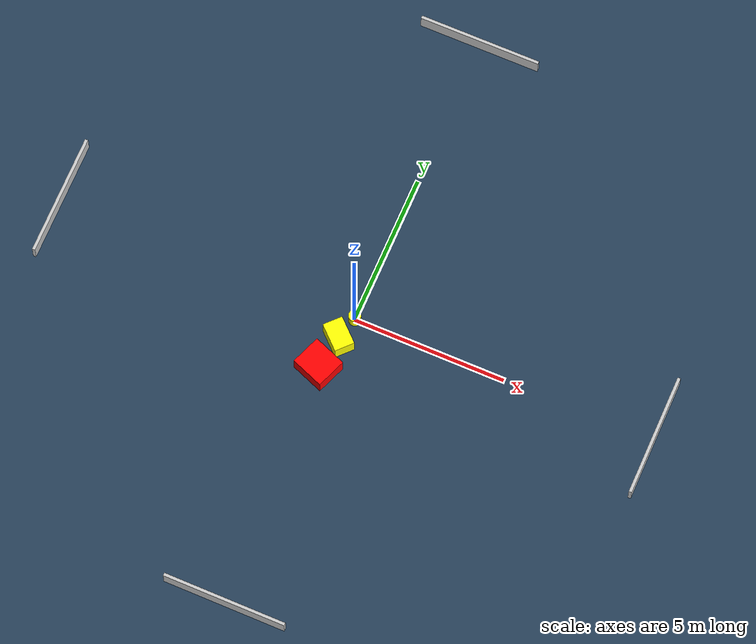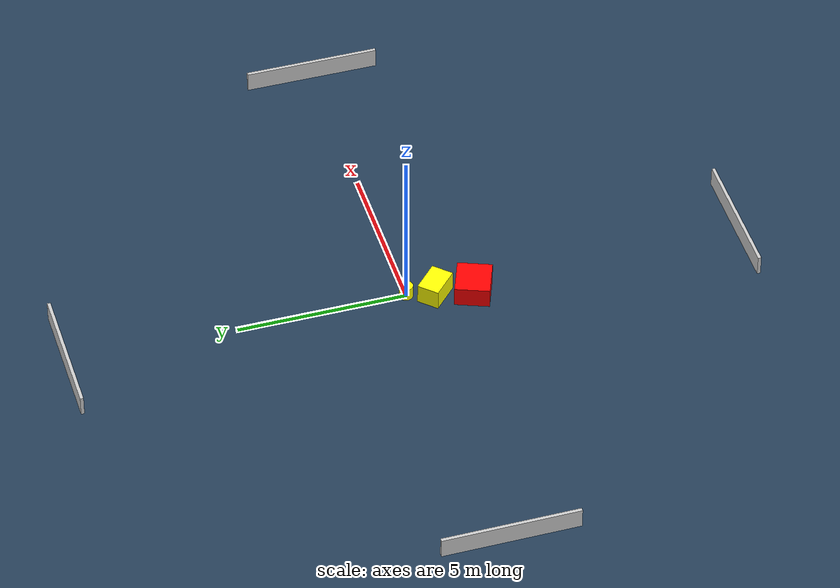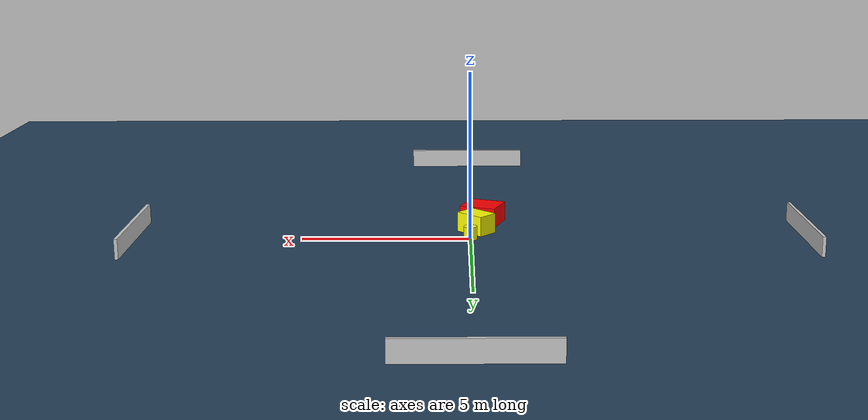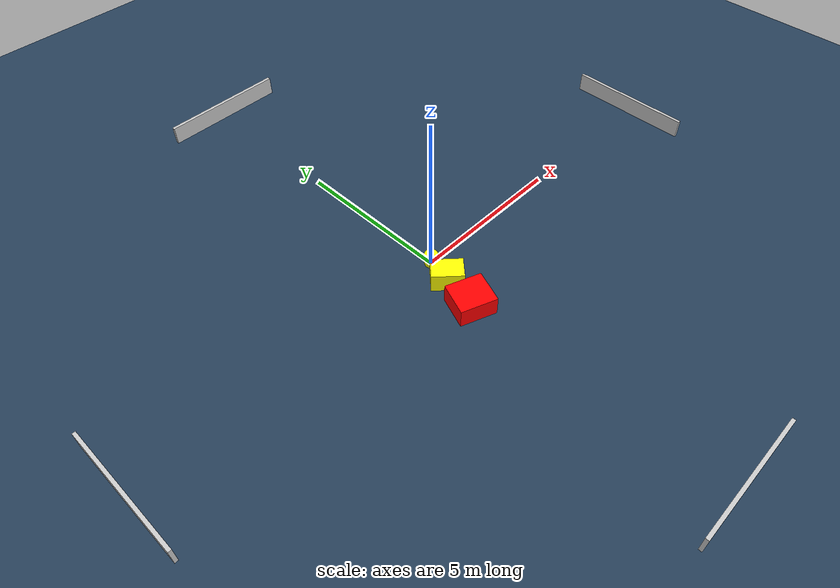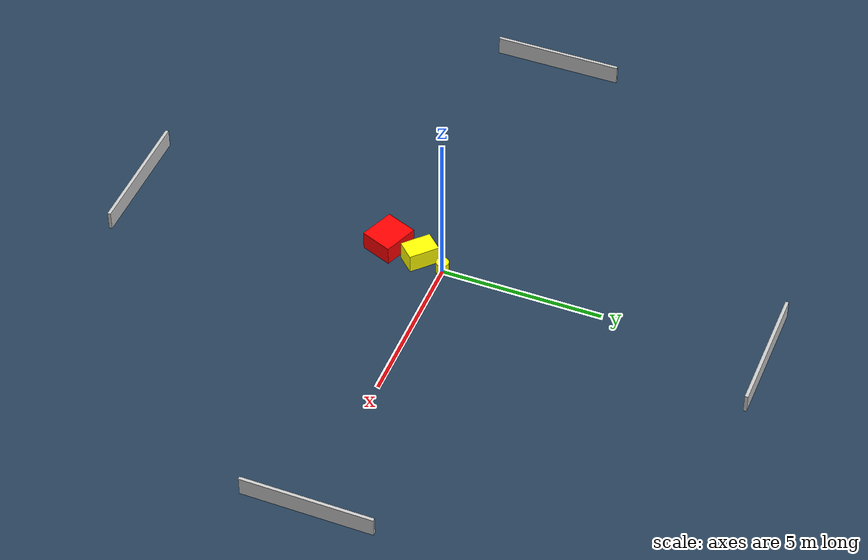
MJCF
<?xml version="1.0" ?>
<mujoco model="generated_environment">
  <option timestep="0.01" integrator="RK4" cone="elliptic"/>
  <default>
    <geom density="1"/>
  </default>
  <asset>
    <texture builtin="gradient" height="3072" name="skybox" rgb1="0.3 0.5 0.7" rgb2="0 0 0" type="skybox" width="512"/>
    <texture builtin="checker" height="300" name="groundplane" rgb1="0.2 0.3 0.4" rgb2="0.1 0.2 0.3" type="2d" width="300"/>
    <material name="groundplane" reflectance="0.2" texrepeat="5 5" texture="groundplane"/>
  </asset>
  <worldbody>
    <light dir="0 0 -1" directional="true" pos="0 0 1.5"/>
    <geom condim="3" friction="0.5 0.005 0.001" material="groundplane" name="floor" pos="0 0 0" size="0 0 0.05" type="plane"/>
    <body name="walls">
      <geom name="wall_1" condim="4" pos="-10.0 0.0 0.3" rgba="0.800000011920929 0.800000011920929 0.800000011920929 1.0" size="0.05 2.0 0.3" type="box"/>
      <geom name="wall_2" condim="4" pos="10.0 0.0 0.3" rgba="0.800000011920929 0.800000011920929 0.800000011920929 1.0" size="0.05 2.0 0.3" type="box"/>
      <geom name="wall_3" condim="4" pos="0.0 -10.0 0.3" rgba="0.800000011920929 0.800000011920929 0.800000011920929 1.0" size="2.0 0.05 0.3" type="box"/>
      <geom name="wall_4" condim="4" pos="0.0 10.0 0.3" rgba="0.800000011920929 0.800000011920929 0.800000011920929 1.0" size="2.0 0.05 0.3" type="box"/>
    </body>
    <body name="robot">
      <joint name="joint_x" type="slide" pos="0 0 0" axis="1 0 0"/>
      <joint name="joint_y" type="slide" pos="0 0 0" axis="0 1 0"/>
      <geom name="robot" type="cylinder" pos="0.0 0.0 0.2" size="0.2 0.2 0.0" mass="5.0" friction="1.0 0.005 0.0001" condim="4" rgba="1.0 1.0 0.0 1.0"/>
    </body>
    <body name="obstacle_1_movable">
      <geom name="obstacle_1_movable" condim="4" pos="-0.19831471661577565 -0.8082430866932346 0.3" euler="0 0 316.7332031793922" friction="0.0 0.005 0.001" rgba="1.0 1.0 0.0 1.0" size="0.47402574747812093 0.3279663465495486 0.3" type="box" mass="0.1"/>
      <joint type="free"/>
    </body>
    <body name="obstacle_2_static">
      <geom name="obstacle_2_static" condim="4" pos="-0.40668669306036637 -1.8906761923909499 0.3" euler="0 0 338.7957134753031" friction="0.0 0.005 0.001" rgba="1.0 0.0 0.0 1.0" size="0.5595752234987914 0.5085550331003343 0.3" type="box"/>
    </body>
  </worldbody>
  <actuator>
    <motor name="actuator_x" joint="joint_x" gear="1" ctrlrange="-1 1"/>
    <motor name="actuator_y" joint="joint_y" gear="1" ctrlrange="-1 1"/>
  </actuator>
</mujoco>
